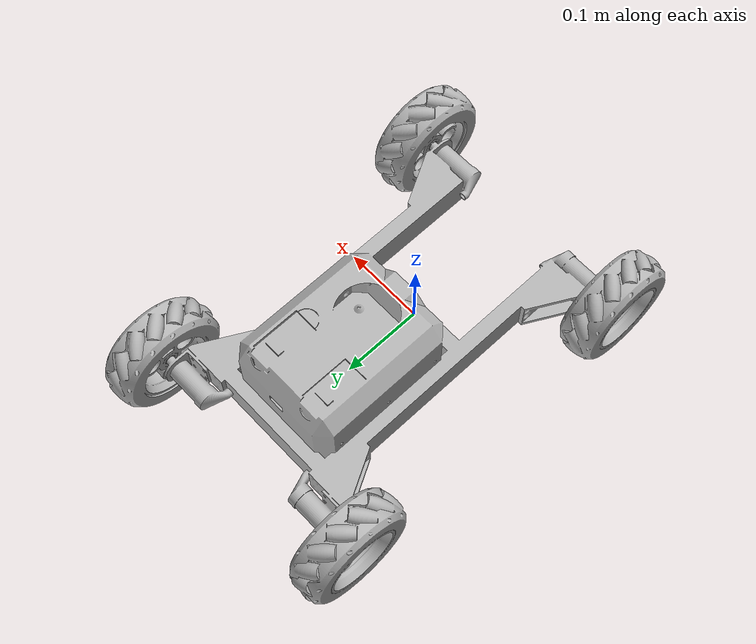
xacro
<?xml version="1.0" ?>
<robot name="minmax" xmlns:xacro="http://www.ros.org/wiki/xacro">

<xacro:include filename="$(find minmax_description)/urdf/materials.xacro" />
<xacro:include filename="$(find minmax_description)/urdf/minmax.trans" />
<xacro:include filename="$(find minmax_description)/urdf/minmax.gazebo" />
<link name="base_link">
  <inertial>
    <origin xyz="-4.289664982796383e-05 0.03267641514636162 0.023507658958163202" rpy="0 0 0"/>
    <mass value="2.1093773604458343"/>
    <inertia ixx="0.070945" iyy="0.017133" izz="0.08592" ixy="1.2e-05" iyz="-0.001355" ixz="5e-06"/>
  </inertial>
  <visual>
    <origin xyz="0 0 0" rpy="0 0 0"/>
    <geometry>
      <mesh filename="package://minmax_description/meshes/base_link.stl" scale="0.001 0.001 0.001"/>
    </geometry>
    <material name="silver"/>
  </visual>
  <collision>
    <origin xyz="0 0 0" rpy="0 0 0"/>
    <geometry>
      <mesh filename="package://minmax_description/meshes/base_link.stl" scale="0.001 0.001 0.001"/>
    </geometry>
  </collision>
</link>

<link name="rear_right_wheel_1">
  <inertial>
    <origin xyz="-0.2954245319318478 0.479185566775879 1.4090085518624756e-05" rpy="0 0 0"/>
    <mass value="0.4837051338981251"/>
    <inertia ixx="0.001358" iyy="0.000755" izz="0.000755" ixy="0.0" iyz="0.0" ixz="0.0"/>
  </inertial>
  <visual>
    <origin xyz="-0.1445 0.2396 -0.017" rpy="0 0 0"/>
    <geometry>
      <mesh filename="package://minmax_description/meshes/rear_right_wheel_1.stl" scale="0.001 0.001 0.001"/>
    </geometry>
    <material name="silver"/>
  </visual>
  <collision>
    <origin xyz="-0.1445 0.2396 -0.017" rpy="0 0 0"/>
    <geometry>
      <mesh filename="package://minmax_description/meshes/rear_right_wheel_1.stl" scale="0.001 0.001 0.001"/>
    </geometry>
  </collision>
</link>

<link name="front_right_wheel_1">
  <inertial>
    <origin xyz="-0.2954245363153505 -0.3271798313212245 -1.797019245908249e-08" rpy="0 0 0"/>
    <mass value="0.4837056531889683"/>
    <inertia ixx="0.001358" iyy="0.000755" izz="0.000755" ixy="-0.0" iyz="-0.0" ixz="0.0"/>
  </inertial>
  <visual>
    <origin xyz="-0.1445 -0.1636 -0.017" rpy="0 0 0"/>
    <geometry>
      <mesh filename="package://minmax_description/meshes/front_right_wheel_1.stl" scale="0.001 0.001 0.001"/>
    </geometry>
    <material name="silver"/>
  </visual>
  <collision>
    <origin xyz="-0.1445 -0.1636 -0.017" rpy="0 0 0"/>
    <geometry>
      <mesh filename="package://minmax_description/meshes/front_right_wheel_1.stl" scale="0.001 0.001 0.001"/>
    </geometry>
  </collision>
</link>

<link name="front_left_wheel_1">
  <inertial>
    <origin xyz="0.2954245319318478 -0.3272139793795933 1.4540475047942342e-05" rpy="0 0 0"/>
    <mass value="0.4837051338981271"/>
    <inertia ixx="0.001358" iyy="0.000755" izz="0.000755" ixy="0.0" iyz="0.0" ixz="0.0"/>
  </inertial>
  <visual>
    <origin xyz="0.1445 -0.1636 -0.017" rpy="0 0 0"/>
    <geometry>
      <mesh filename="package://minmax_description/meshes/front_left_wheel_1.stl" scale="0.001 0.001 0.001"/>
    </geometry>
    <material name="silver"/>
  </visual>
  <collision>
    <origin xyz="0.1445 -0.1636 -0.017" rpy="0 0 0"/>
    <geometry>
      <mesh filename="package://minmax_description/meshes/front_left_wheel_1.stl" scale="0.001 0.001 0.001"/>
    </geometry>
  </collision>
</link>

<link name="rear_left_wheel_1">
  <inertial>
    <origin xyz="0.2954245363153505 0.4791997178229248 2.0166712735948666e-05" rpy="0 0 0"/>
    <mass value="0.48370565318896697"/>
    <inertia ixx="0.001358" iyy="0.000755" izz="0.000755" ixy="-0.0" iyz="0.0" ixz="-0.0"/>
  </inertial>
  <visual>
    <origin xyz="0.1445 0.2396 -0.017" rpy="0 0 0"/>
    <geometry>
      <mesh filename="package://minmax_description/meshes/rear_left_wheel_1.stl" scale="0.001 0.001 0.001"/>
    </geometry>
    <material name="silver"/>
  </visual>
  <collision>
    <origin xyz="0.1445 0.2396 -0.017" rpy="0 0 0"/>
    <geometry>
      <mesh filename="package://minmax_description/meshes/rear_left_wheel_1.stl" scale="0.001 0.001 0.001"/>
    </geometry>
  </collision>
</link>

<joint name="Revolute 4" type="continuous">
  <origin xyz="0.1445 -0.2396 0.017" rpy="0 0 0"/>
  <parent link="base_link"/>
  <child link="rear_right_wheel_1"/>
  <axis xyz="-1.0 0.0 0.0"/>
</joint>

<joint name="Revolute 3" type="continuous">
  <origin xyz="0.1445 0.1636 0.017" rpy="0 0 0"/>
  <parent link="base_link"/>
  <child link="front_right_wheel_1"/>
  <axis xyz="1.0 -0.0 0.0"/>
</joint>

<joint name="Revolute 2" type="continuous">
  <origin xyz="-0.1445 0.1636 0.017" rpy="0 0 0"/>
  <parent link="base_link"/>
  <child link="front_left_wheel_1"/>
  <axis xyz="1.0 -0.0 0.0"/>
</joint>

<joint name="Revolute 1" type="continuous">
  <origin xyz="-0.1445 -0.2396 0.017" rpy="0 0 0"/>
  <parent link="base_link"/>
  <child link="rear_left_wheel_1"/>
  <axis xyz="-1.0 0.0 0.0"/>
</joint>

</robot>

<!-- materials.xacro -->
<robot name="minmax" xmlns:xacro="http://www.ros.org/wiki/xacro" >

<material name="silver">
  <color rgba="0.700 0.700 0.700 1.000"/>
</material>

</robot>

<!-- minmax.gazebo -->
<robot name="minmax" xmlns:xacro="http://www.ros.org/wiki/xacro" >

<xacro:property name="body_color" value="Gazebo/Silver" />

<gazebo>
  <plugin name="control" filename="libgazebo_ros_control.so"/>
</gazebo>
<gazebo reference="base_link">
  <material>${body_color}</material>
  <mu1>0.2</mu1>
  <mu2>0.2</mu2>
  <selfCollide>true</selfCollide>
  <gravity>true</gravity>
</gazebo>

<gazebo reference="rear_right_wheel_1">
  <material>${body_color}</material>
  <mu1>0.2</mu1>
  <mu2>0.2</mu2>
  <selfCollide>true</selfCollide>
</gazebo>

<gazebo reference="front_right_wheel_1">
  <material>${body_color}</material>
  <mu1>0.2</mu1>
  <mu2>0.2</mu2>
  <selfCollide>true</selfCollide>
</gazebo>

<gazebo reference="front_left_wheel_1">
  <material>${body_color}</material>
  <mu1>0.2</mu1>
  <mu2>0.2</mu2>
  <selfCollide>true</selfCollide>
</gazebo>

<gazebo reference="rear_left_wheel_1">
  <material>${body_color}</material>
  <mu1>0.2</mu1>
  <mu2>0.2</mu2>
  <selfCollide>true</selfCollide>
</gazebo>

</robot>
